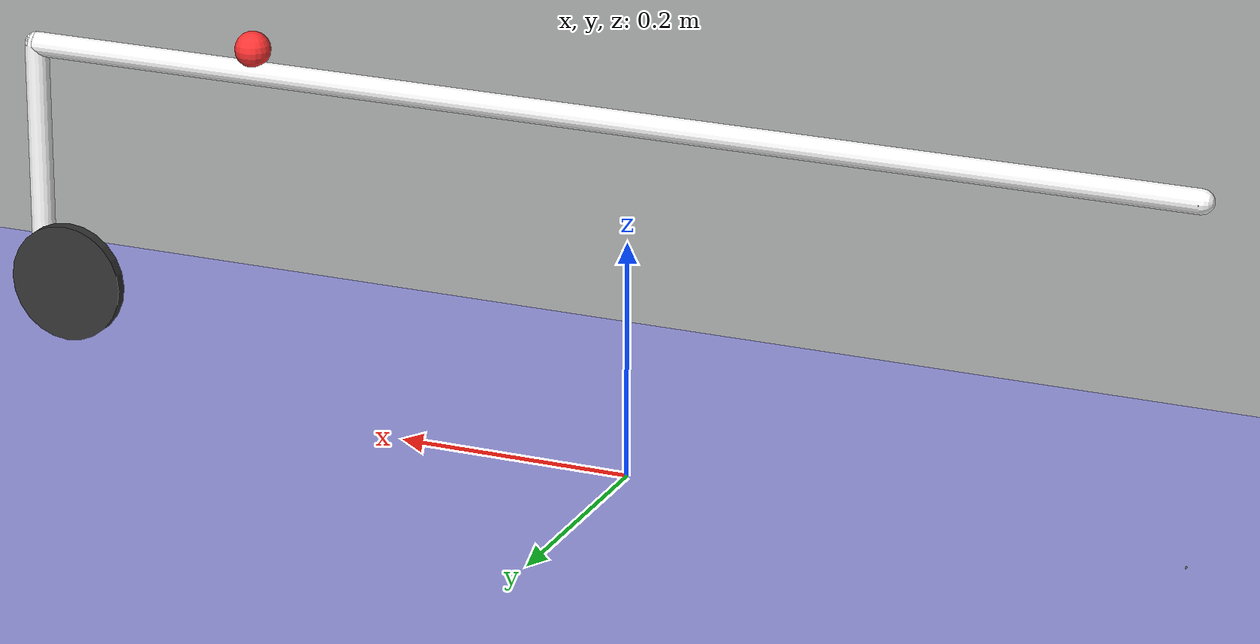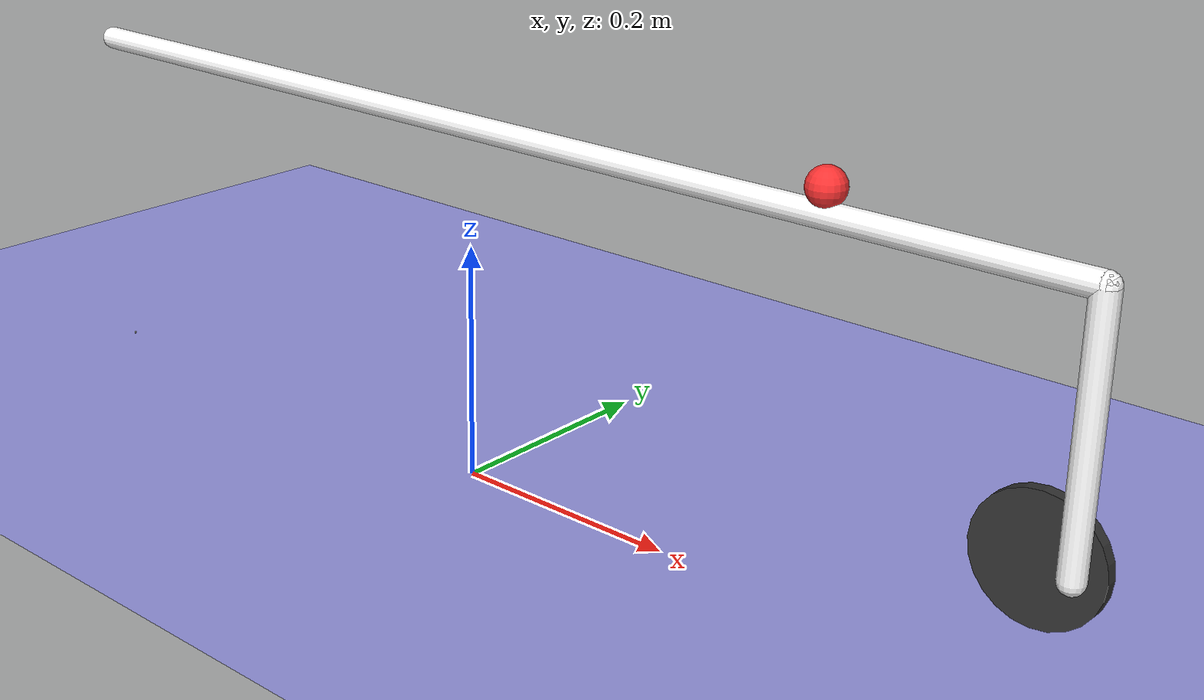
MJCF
<mujoco>
    <asset>
        <texture name="grid" type="2d" builtin="checker" width="512" height="512" rgb1=".9 .9 .9" rgb2=".3 .3 .9"/>
        <material name="grid" texture="grid" texrepeat="1 1" texuniform="true" reflectance=".2"/>
    </asset>

    <worldbody>
        <light diffuse=".9 .9 .9" pos="0 0.3 2" dir="0 0 -1" />
        <geom type="plane" size="1 1 .1" material="grid" />

        <!-- Fixed gear body, connected to the actuator -->
        <body name="gear" pos=".5 0 0.1">
            <!-- Gear joint - Allow it to rotate -->
            <!-- Adjust gear to move between -60 and 60 degrees -->
            <joint type="hinge" name="gear_joint" axis="0 1 0" damping=".5"/>
            <geom type="cylinder" size="0.05 0.005" euler="90 0 0" pos="0 .015 0" rgba=".2 .2 .2 1"/>
            <!-- Pole, connected to the gear and with 1 dof to be comfortably attached to the gear -->
            <body name="pole" pos="0.03 0 0">
                <joint type="hinge" name="pole_joint" axis="0 1 0"/>
                <geom type="capsule" fromto="0 0 0 0 0 0.2" size="0.01" rgba="1 1 1 1"/>
                <!-- The beam where the ball will be attached -->
                <body name="beam" pos="0 0 0.2">
                    <geom type="capsule" fromto="0 0 0 -1 0 0" size="0.01" rgba="1 1 1 1"/>
                    <joint name="beam_joint" type="hinge" axis="0 1 0" pos="0 0 0" />
                    <!-- The ball to be controlled -->
                    <body name="ball" pos="-.2 0 0.02">
                        <joint name="ball_joint" type="slide" axis="1 0 0" pos="0 0 0" limited="true" range="-0.8 0.2"/>
                        <geom type="sphere" name="control_ball" size="0.015" mass="0.11" rgba="1 .2 .2 1"/>
                    </body>

                    <!-- Attempt to fix the beam to the world -->
                    <body name="fixed_end1" pos="-1 0 -.3">
                        <joint type="ball" />
                        <geom size=".001 .001 .001"/>
                    </body>
                </body>
            </body>
        </body>

    </worldbody>

    <equality>
        <weld body1="fixed_end1" anchor="-.45 0 0" />
    </equality>

    <actuator>
        <motor gear="5" joint="gear_joint" name="motor"/>
    </actuator>

    <sensor>
        <jointpos name="alpha" joint="beam_joint"/>
        <jointpos name="theta" joint="gear_joint"/>
        <jointvel name="theta_dot" joint="gear_joint"/>
    </sensor>
</mujoco>
